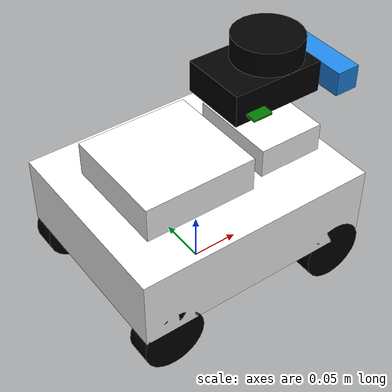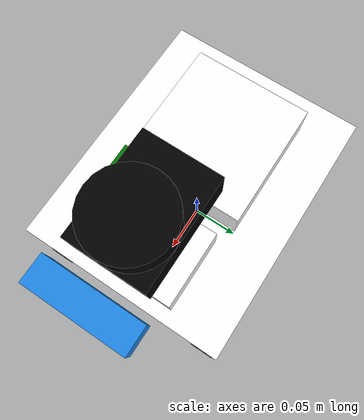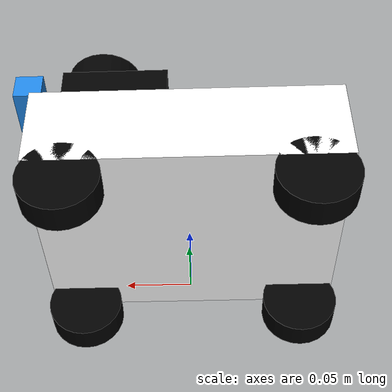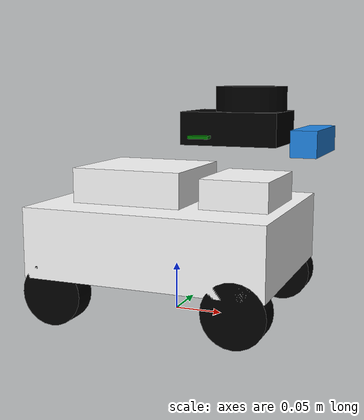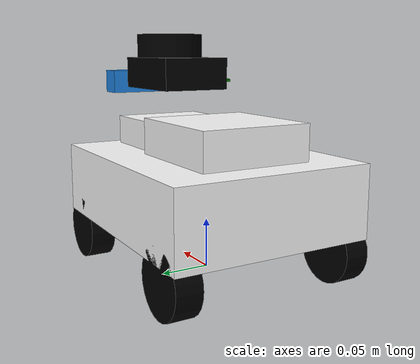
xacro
<?xml version="1.0"?>
<robot name="R2B2" xmlns:xacro="http://ros.org/wiki/xacro">

    <!-- Configurable Measurements -->
    <xacro:property name="wheel_dia" value="0.064" />
    <xacro:property name="wheel_width" value="0.025" />
    <xacro:property name="wheel_x_from_ctr" value="0.095" />
    <xacro:property name="wheel_y_from_ctr" value="0.0875" />
    <xacro:property name="wheel_mass" value="0.040" />
    <xacro:property name="wheel_max_velocity" value="${pi * 2 * (220 / 60)}" />  <!-- 220 RPM -->

    <xacro:property name="base_x_len" value="0.250" />
    <xacro:property name="base_y_width" value="0.200" />
    <xacro:property name="base_plate_ht" value="0.006" />
    <xacro:property name="base_standoff_ht" value="0.060" />
    <xacro:property name="base_link_mass" value="2.125" />

    <xacro:property name="motor_mount_ht" value="0.0145" />
    <xacro:property name="sensor_arch_ht" value="0.062" />

    <!-- NUC8i5BEK 4.60" x 4.40" x 1.41" (117 mm x 112 mm x 36 mm) -->
    <xacro:property name="nuc_length" value="0.117" />
    <xacro:property name="nuc_width" value="0.112" />
    <xacro:property name="nuc_height" value="0.036" />

    <xacro:property name="camera_length" value="0.025" />
    <xacro:property name="camera_width" value="0.090" />
    <xacro:property name="camera_height" value="0.025" />
    <xacro:property name="camera_mass" value="0.069" />

    <xacro:property name="scanner_length" value="0.0968" />
    <xacro:property name="scanner_width" value="0.0703" />
    <xacro:property name="scanner_height" value="0.057" />
    <xacro:property name="scanner_sensor_height" value="0.048" />
    <xacro:property name="scanner_cylinder_height" value="0.0245" />
    <xacro:property name="scanner_cylinder_dia" value="0.070" />
    <xacro:property name="scanner_mass" value="0.170" />

    <xacro:property name="imu_length" value="0.02032" />
    <xacro:property name="imu_width" value="0.0127" />
    <xacro:property name="imu_height" value="0.003" />
    <xacro:property name="imu_standoff_height" value="0.008" />
    <xacro:property name="imu_mass" value="0.0007" />

    <!-- Derived Measurements -->
    <xacro:property name="base_box_ht" value="${base_plate_ht + base_standoff_ht + base_plate_ht}" />
    <xacro:property name="base_box_ht_from_floor" value="${wheel_dia/2 + motor_mount_ht}"/>
    <xacro:property name="base_box_top_ht" value="${base_box_ht_from_floor + base_box_ht}"/>
    <xacro:property name="base_cg_height" value="${base_box_ht_from_floor + (base_box_ht/2)}" />

    <!-- Macros -->
    <!-- https://en.wikipedia.org/wiki/List_of_moments_of_inertia#List_of_3D_inertia_tensors -->
    <xacro:macro name="box_inertial" params="mass length width height">
        <inertial>
            <mass value="${mass}" />
            <inertia
                ixx="${1/12 * mass * (pow(height, 2) + pow(length, 2))}"
                ixy="0"
                ixz="0"
                iyy="${1/12 * mass * (pow(width, 2) + pow(height, 2))}"
                iyz="0"
                izz="${1/12 * mass * (pow(width, 2) + pow(length, 2))}"
            />
        </inertial>
    </xacro:macro>

    <xacro:macro name="cylinder_inertial" params="mass radius height">
        <inertial>
            <mass value="${mass}" />
            <inertia
                ixx="${1/12 * mass * (3 * pow(radius, 2) + pow(height, 2))}"
                ixy="0"
                ixz="0"
                iyy="${1/12 * mass * (3 * pow(radius, 2) + pow(height, 2))}"
                iyz="0"
                izz="${1/12 * mass * pow(radius, 2)}"
            />
        </inertial>
    </xacro:macro>

    <!-- Links -->
    <link name="base_footprint"/>

    <link name="base_link">

        <visual name="frame_box">
            <!-- Top of frame is 120mm from origin -->
            <geometry>
                <box size="${base_x_len} ${base_y_width} ${base_box_ht}" />
            </geometry>
            <origin xyz="0.0 0.0 ${base_box_ht_from_floor + base_box_ht/2 - base_cg_height}"/>
            <material name="White" />
            <gazebo reference="frame_box">
                <material>Gazebo/White</material>
            </gazebo>
        </visual>

        <visual name="nuc">
            <!-- Top of NUC is 156mm from origin -->
            <geometry>
                <box size="${nuc_length} ${nuc_width} ${nuc_height}"/>
            </geometry>
            <origin xyz="-0.0335 0.0 ${base_box_top_ht + 0.036/2 - base_cg_height}"/>
            <material name="White" />
            <gazebo reference="nuc">
                <material>Gazebo/White</material>
            </gazebo>
        </visual>

        <visual name="raspberry_pi4">
            <geometry>
                <box size="0.070 0.094 0.030"/>
            </geometry>
            <origin xyz="0.077 0.0 ${base_box_top_ht + 0.030/2 - base_cg_height}"/>
            <material name="White" />
            <gazebo reference="raspberry_pi4">
                <material>Gazebo/White</material>
            </gazebo>
        </visual>

        <collision>
            <geometry>
                <!-- Scanner and camera collisions ar part of their links -->

                <!-- The base_link's collision box should be at the bottom of the motor mounts -->
                <box size="${base_x_len} ${base_y_width - (wheel_width * 2)} ${base_box_top_ht + sensor_arch_ht - wheel_dia/2}" />

                <!-- Translate the collision box's orgin up from the link's orgin by 1/2 of the difference in their sizes -->
                <!-- so that they are aligned at the top, and the gap is at the bottom. -->
                <!-- The difference in size is the wheel radius, so translate up 1/2 of the radius  -->
                <origin xyz="0 0 ${wheel_dia/4}" rpy="0 0 0"/>
            </geometry>
        </collision>

        <xacro:box_inertial
            mass="${base_link_mass}" length="${base_x_len}"
            width="${base_y_width}" height="${base_box_top_ht + sensor_arch_ht}" />
    </link>

    <link name="camera_link">
        <visual>
            <geometry>
                <box size="${camera_length} ${camera_width} ${camera_height}"/>
            </geometry>
            <material name="Sky Blue" />
            <gazebo reference="camera_link">
                <material>Gazebo/Blue</material>
            </gazebo>
        </visual>

        <collision>
            <geometry>
                <box size="${camera_length} ${camera_width} ${camera_height}"/>
            </geometry>
        </collision>

        <xacro:box_inertial
            mass="${camera_mass}" length="${camera_length}"
            width="${camera_width}" height="${camera_height}" />

     </link>

    <link name="imu_link">
        <visual>
            <geometry>
                <box size="${imu_length} ${imu_width} ${imu_height}" />
            </geometry>
            <material name="PCB Green" />
            <gazebo reference="imu_link">
                <material>Gazebo/Green</material>
            </gazebo>
        </visual>

        <collision>
            <geometry>
                <box size="${imu_length} ${imu_width} ${imu_height}" />
            </geometry>
        </collision>

        <xacro:box_inertial
            mass="${imu_mass}" length="${imu_length}"
            width="${imu_width}" height="${imu_height}" />
    </link>

    <link name="scanner_link">
        <!-- Note Scanner link's origin needs to be where the receive sensor is located, near the top -->
        <visual name="scanner_cylinder_visual">
            <geometry>
                <cylinder radius="${scanner_cylinder_dia/2}" length="${scanner_cylinder_height}"/>
            </geometry>
            <origin xyz="0 0 ${scanner_cylinder_height/2 - (scanner_sensor_height - (scanner_height - scanner_cylinder_height))}"/>
            <material name="Black" />
            <gazebo reference="scanner_cylinder_visual">
                <material>Gazebo/Orange</material>
            </gazebo>
        </visual>
        <visual name="scanner_box_visual">
            <geometry>
                <box size="${scanner_length} ${scanner_width} ${scanner_height - scanner_cylinder_height}"/>
            </geometry>
            <origin xyz="${(scanner_length - scanner_cylinder_dia)/2} 0.0 ${ -(scanner_cylinder_height - scanner_height + (2 * scanner_sensor_height)) / 2 }" />
            <material name="Black" />
            <gazebo reference="scanner_box_visual">
                <material>Gazebo/Black</material>
            </gazebo>
        </visual>

        <collision>
            <!--
            The collision box needs to be dropped from the sensor origin,
            since the sensor origin is near the top of the scanner box.
            -->
            <origin xyz="0.0 0.0 ${scanner_height/2 - (scanner_height - scanner_sensor_height)}"/>
            <geometry>
                <box size="${scanner_length} ${scanner_width} ${scanner_height}"/>
            </geometry>
        </collision>

        <xacro:box_inertial
            mass="${scanner_mass}" length="${scanner_length}"
            width="${scanner_width}" height="${scanner_height}" />
    </link>

    <!-- Wheels -->
    <link name="front_left_wheel_link">
        <visual name="front_left_wheel">
            <geometry>
                <cylinder radius="${wheel_dia/2}" length="${wheel_width}"/>
            </geometry>
            <material name="Black" />
            <gazebo reference="front_left_wheel">
                <material>Gazebo/Black</material>
            </gazebo>
        </visual>

        <collision>
            <geometry>
                <cylinder radius="${wheel_dia/2}" length="${wheel_width}"/>
            </geometry>
        </collision>

        <xacro:cylinder_inertial mass="${wheel_mass}" radius="${wheel_dia/2}" height="${wheel_width}"/>
    </link>

    <link name="front_right_wheel_link">
        <visual name="front_right_wheel">
            <geometry>
                <cylinder radius="${wheel_dia/2}" length="${wheel_width}"/>
            </geometry>
            <material name="Black" />
            <gazebo reference="front_right_wheel">
                <material>Gazebo/Black</material>
            </gazebo>
        </visual>
        <collision>
            <geometry>
                <cylinder radius="${wheel_dia/2}" length="${wheel_width}"/>
            </geometry>
        </collision>

        <xacro:cylinder_inertial mass="${wheel_mass}" radius="${wheel_dia/2}" height="${wheel_width}"/>
    </link>

    <link name="rear_left_wheel_link">
        <visual name="rear_left_wheel">
            <geometry>
                <cylinder radius="${wheel_dia/2}" length="${wheel_width}"/>
            </geometry>
            <material name="Black" />
            <gazebo reference="rear_left_wheel">
                <material>Gazebo/Black</material>
            </gazebo>
        </visual>
        <collision>
            <geometry>
                <cylinder radius="${wheel_dia/2}" length="${wheel_width}"/>
            </geometry>
        </collision>

        <xacro:cylinder_inertial mass="${wheel_mass}" radius="${wheel_dia/2}" height="${wheel_width}"/>
    </link>

    <link name="rear_right_wheel_link">
        <visual name="rear_right_wheel">
            <geometry>
                <cylinder radius="${wheel_dia/2}" length="${wheel_width}"/>
            </geometry>
            <material name="Black" />
            <gazebo reference="rear_right_wheel">
                <material>Gazebo/Black</material>
            </gazebo>
        </visual>
        <collision>
            <geometry>
                <cylinder radius="${wheel_dia/2}" length="${wheel_width}"/>
            </geometry>
        </collision>

        <xacro:cylinder_inertial mass="${wheel_mass}" radius="${wheel_dia/2}" height="${wheel_width}"/>
    </link>

    <!-- Joints -->
    <joint name="base_link_joint" type="fixed">
        <origin xyz="0 0 ${base_cg_height}" rpy="0 0 0" />
        <parent link="base_footprint" />
        <child link="base_link" />
    </joint>

    <joint name="camera_link_joint" type="fixed">
        <origin xyz="0.143 0.0 ${0.185 - base_cg_height}" rpy="0.0 0.0 0.0"/>

        <parent link="base_link"/>
        <child link="camera_link"/>
    </joint>

    <joint name="imu_link_joint" type="fixed">
        <origin xyz="0.040 -0.040 ${base_box_top_ht + sensor_arch_ht + imu_standoff_height - base_cg_height}"
                rpy="0.0 0.0 0.0"/>
        <parent link="base_link"/>
        <child link="imu_link"/>
    </joint>

    <joint name="scanner_link_joint" type="fixed">
        <origin xyz="0.080 0 ${0.228 - base_cg_height}" rpy="0.0 0.0 ${pi}"/>
        <parent link="base_link"/>
        <child link="scanner_link"/>
    </joint>

    <joint name="front_left_wheel_joint" type="continuous">
        <axis xyz="0 0 1"/>
        <origin xyz="${wheel_x_from_ctr} ${wheel_y_from_ctr} ${wheel_dia/2 - base_cg_height}" rpy="-${pi/2} 0.0 0.0"/>
        <parent link="base_link"/>
        <child link="front_left_wheel_link"/>
    </joint>

    <joint name="front_right_wheel_joint" type="continuous">
        <axis xyz="0 0 1"/>
        <origin xyz="${wheel_x_from_ctr} -${wheel_y_from_ctr} ${wheel_dia/2 - base_cg_height}" rpy="-${pi/2} 0.0 0.0"/>
        <parent link="base_link"/>
        <child link="front_right_wheel_link"/>
    </joint>

    <joint name="rear_left_wheel_joint" type="continuous">
        <axis xyz="0 0 1"/>
        <origin xyz="-${wheel_x_from_ctr} ${wheel_y_from_ctr} ${wheel_dia/2 - base_cg_height}" rpy="-${pi/2} 0.0 0.0"/>
        <parent link="base_link"/>
        <child link="rear_left_wheel_link"/>
    </joint>

    <joint name="rear_right_wheel_joint" type="continuous">
        <axis xyz="0 0 1"/>
        <origin xyz="-${wheel_x_from_ctr} -${wheel_y_from_ctr} ${wheel_dia/2 - base_cg_height}" rpy="-${pi/2} 0.0 0.0"/>
        <parent link="base_link"/>
        <child link="rear_right_wheel_link"/>
    </joint>

    <!-- Materials -->
    <material name="Black">
        <color rgba="0.0 0.0 0.0 1.0"/>
    </material>

    <material name="Sky Blue">
        <color rgba="0.125 0.525 0.90 1.0"/>
    </material>

    <material name="White">
        <color rgba="1.0 1.0 1.0 1.0"/>
    </material>

    <material name="PCB Green">
        <color rgba="0.0 0.468 0.0 1.0"/>
    </material>

    <material name="Gray">
        <color rgba="0.5 0.5 0.5 1.0"/>
    </material>

    <gazebo reference="scanner_link_joint">
        <preserveFixedJoint>true</preserveFixedJoint>
    </gazebo>
    <gazebo reference="camera_link_joint">
        <preserveFixedJoint>true</preserveFixedJoint>
    </gazebo>
    <gazebo reference="imu_link_joint">
        <preserveFixedJoint>true</preserveFixedJoint>
    </gazebo>

    <gazebo reference="scanner_link">
        <sensor name='rplidar_a1' type='gpu_lidar'>
            <!-- 10Hz @ 4000 points = 400 samples and 10 update rate -->
            <pose relative_to="scanner_link">0 0 0 0 0 0</pose>
            <topic>scan</topic>
            <update_rate>5.5</update_rate>
            <lidar>
                <scan>
                    <horizontal>
                        <samples>725</samples>
                        <resolution>1</resolution>
                        <min_angle>-${pi}</min_angle>
                        <max_angle>${pi}</max_angle>
                    </horizontal>
                    <vertical>
                        <samples>16</samples>
                        <resolution>1</resolution>
                        <min_angle>-0.0261799</min_angle>
                        <max_angle>0.0261799</max_angle>
                    </vertical>
                    </scan>
                <range>
                    <min>0.15</min>
                    <max>12.0</max>
                    <resolution>0.01</resolution>
                </range>
                <noise>
                    <type>guassian</type>
                    <mean>0.0</mean>
                    <stddev>0.01</stddev>
                </noise>
            </lidar>
            <always_on>true</always_on>
            <visualize>true</visualize>
            <ignition_frame_id>scanner_link</ignition_frame_id>
        </sensor>
    </gazebo>

    <gazebo reference="camera_link">
        <sensor name="rgbd_camera" type="rgbd_camera">
            <topic>rgbd_camera</topic>
            <update_rate>30</update_rate>
            <camera>
                <horizontal_fov>1.2133529</horizontal_fov>
                <image>
                    <width>640</width>
                    <height>480</height>
                    <format>R8G8B8</format>
                </image>
                <distortion>
                    <k1>0</k1>
                    <k2>0</k2>
                    <k3>0</k3>
                    <p1>0</p1>
                    <p2>0</p2>
                    <center>0.5 0.5</center>
                </distortion>
                <lens>
                    <type>sterographic</type>
                    <scale_to_hfov>true</scale_to_hfov>
                    <intrinsics>
                        <fx>461.115600585938</fx>
                        <fy>461.144226074219</fy>
                        <cx>319.159820556641</cx>
                        <cy>181.155624389648</cy>
                        <s>0</s>
                    </intrinsics>
                </lens>
                <clip>
                    <near>0.1</near>
                    <far>50</far>
                </clip>
            </camera>
            <depth_camera>
                <output>depths</output>
                <clip>
                    <near>0.3</near>
                    <far>3.0</far>
                </clip>
            </depth_camera>
            <always_on>1</always_on>
            <visualize>true</visualize>
            <enable_metrics>true</enable_metrics>
            <ignition_frame_id>camera_link</ignition_frame_id>
          </sensor>

    </gazebo>

    <gazebo reference="imu_link">
        <sensor name="imu_sensor" type="imu">
            <always_on>1</always_on>
            <imu>
                <angular_velocity>
                  <x>
                    <noise type="gaussian">
                      <mean>0.0</mean>
                      <stddev>2e-4</stddev>
                      <bias_mean>0.0000075</bias_mean>
                      <bias_stddev>0.0000008</bias_stddev>
                    </noise>
                  </x>
                  <y>
                    <noise type="gaussian">
                      <mean>0.0</mean>
                      <stddev>2e-4</stddev>
                      <bias_mean>0.0000075</bias_mean>
                      <bias_stddev>0.0000008</bias_stddev>
                    </noise>
                  </y>
                  <z>
                    <noise type="gaussian">
                      <mean>0.0</mean>
                      <stddev>2e-4</stddev>
                      <bias_mean>0.0000075</bias_mean>
                      <bias_stddev>0.0000008</bias_stddev>
                    </noise>
                  </z>
                </angular_velocity>
                <linear_acceleration>
                  <x>
                    <noise type="gaussian">
                      <mean>0.0</mean>
                      <stddev>1.7e-2</stddev>
                      <bias_mean>0.1</bias_mean>
                      <bias_stddev>0.001</bias_stddev>
                    </noise>
                  </x>
                  <y>
                    <noise type="gaussian">
                      <mean>0.0</mean>
                      <stddev>1.7e-2</stddev>
                      <bias_mean>0.1</bias_mean>
                      <bias_stddev>0.001</bias_stddev>
                    </noise>
                  </y>
                  <z>
                    <noise type="gaussian">
                      <mean>0.0</mean>
                      <stddev>1.7e-2</stddev>
                      <bias_mean>0.1</bias_mean>
                      <bias_stddev>0.001</bias_stddev>
                    </noise>
                  </z>
                </linear_acceleration>
              </imu>
            <update_rate>10</update_rate>
            <visualize>true</visualize>
            <topic>imu</topic>
            <ignition_frame_id>imu_link</ignition_frame_id>
        </sensor>
    </gazebo>

</robot>
